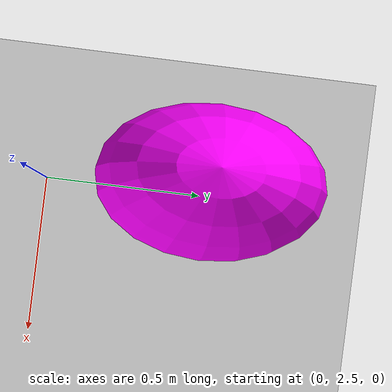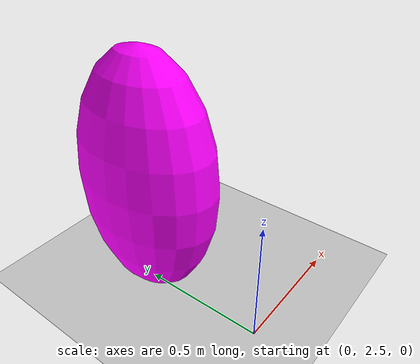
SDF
<?xml version="1.0" ?>
<sdf version="1.8">
  <world name="ellipsoid_world">
    <model name="ground_plane">
      <static>true</static>
      <link name="link">
        <collision name="collision">
          <geometry>
            <plane>
              <normal>0 0 1</normal>
              <size>10 10</size>
            </plane>
          </geometry>
        </collision>
        <visual name="visual">
          <geometry>
            <plane>
              <normal>0 0 1</normal>
              <size>10 10</size>
            </plane>
          </geometry>
        </visual>
      </link>
    </model>

    <model name="ellipsoid">
      <pose>0 3.0 0.5 0 0 0</pose>
      <link name="ellipsoid_link">
        <inertial>
          <inertia>
            <ixx>0.068</ixx>
            <ixy>0</ixy>
            <ixz>0</ixz>
            <iyy>0.058</iyy>
            <iyz>0</iyz>
            <izz>0.026</izz>
          </inertia>
          <mass>1.0</mass>
        </inertial>
        <collision name="ellipsoid_collision">
          <geometry>
            <ellipsoid>
              <radii>0.2 0.3 0.5</radii>
            </ellipsoid>
          </geometry>
        </collision>
        <visual name="ellipsoid_visual">
          <geometry>
            <ellipsoid>
              <radii>0.2 0.3 0.5</radii>
            </ellipsoid>
          </geometry>
          <material>
            <ambient>1 0 1 1</ambient>
            <diffuse>1 0 1 1</diffuse>
            <specular>1 0 1 1</specular>
          </material>
        </visual>
      </link>
    </model>
  </world>
</sdf>
